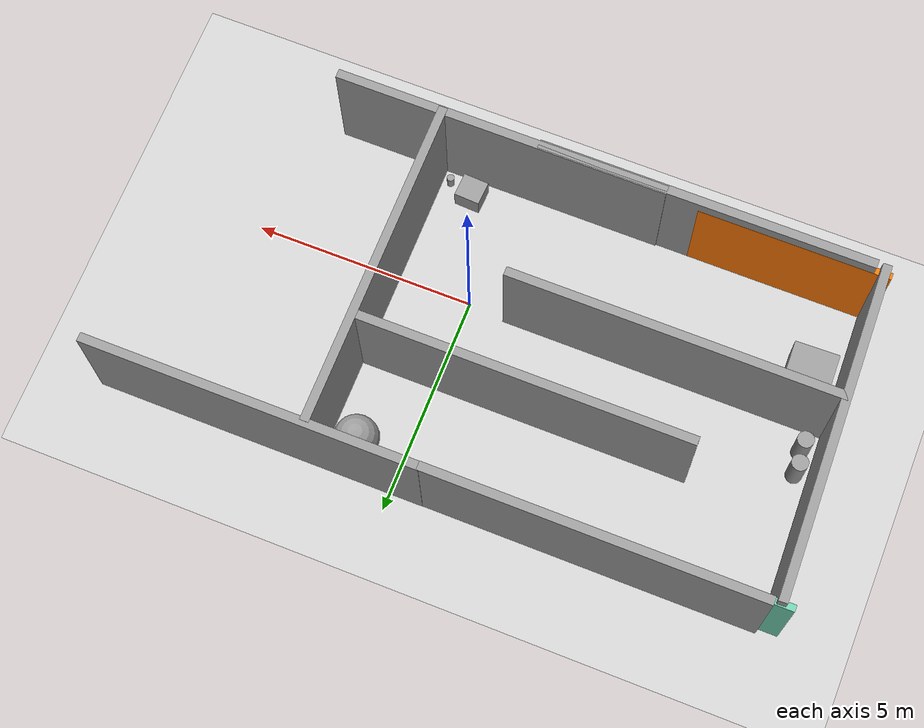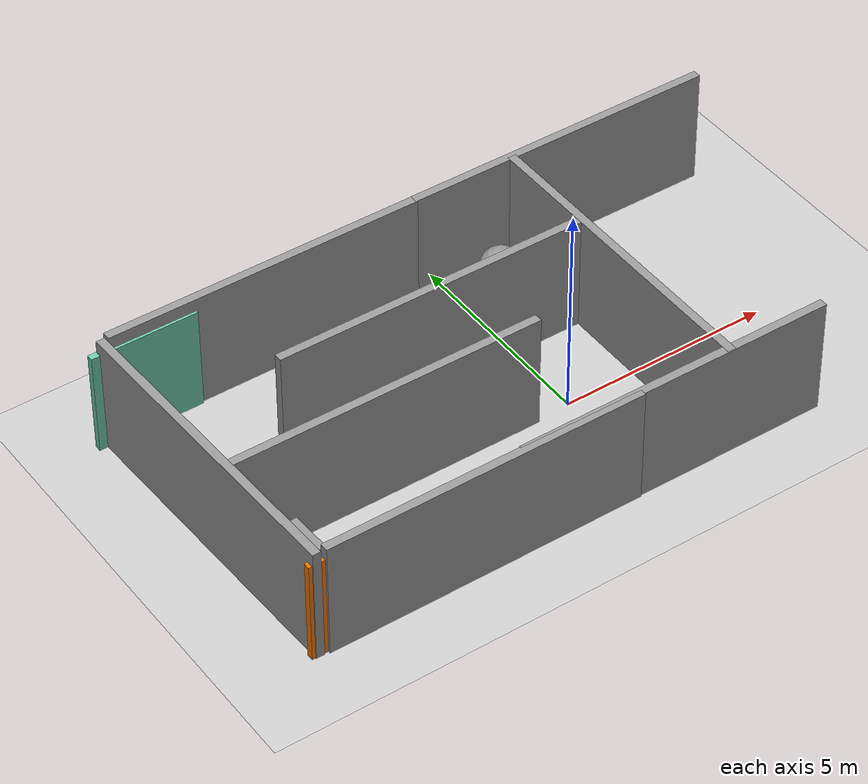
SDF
<sdf version="1.6">
 <world name="default">
  <light name="sun" type="directional">
   <pose>0 0 10 0 -0 0</pose>
   <diffuse>0.8 0.8 0.8 1</diffuse>
   <specular>0.2 0.2 0.2 1</specular>
   <attenuation>
    <range>1000</range>
    <constant>0.9</constant>
    <linear>0.01</linear>
    <quadratic>0.001</quadratic>
   </attenuation>
   <direction>-0.5 0.1 -0.9</direction>
  </light>
  <model name="ground_plane">
   <static>1</static>
   <link name="link">
    <collision name="collision">
     <geometry><plane><normal>0 0 1</normal><size>100 100</size></plane></geometry>
     <surface><friction><ode><mu>100</mu><mu2>50</mu2></ode></friction></surface>
    </collision>
    <visual name="visual">
     <cast_shadows>0</cast_shadows>
     <geometry><plane><normal>0 0 1</normal><size>100 100</size></plane></geometry>
     <material>
      <script><uri>file://media/materials/scripts/gazebo.material</uri><name>Gazebo/Grey</name></script>
     </material>
    </visual>
    <velocity_decay><linear>0</linear><angular>0</angular></velocity_decay>
   </link>
  </model>
  <physics name="default_physics" default="0" type="ode">
   <max_step_size>0.001</max_step_size>
   <real_time_factor>1</real_time_factor>
   <real_time_update_rate>1000</real_time_update_rate>
  </physics>
  <scene><ambient>0.4 0.4 0.4 1</ambient><background>0.7 0.7 0.7 1</background><shadows>1</shadows></scene>
  <spherical_coordinates>
   <surface_model>EARTH_WGS84</surface_model>
   <latitude_deg>0</latitude_deg>
   <longitude_deg>0</longitude_deg>
   <elevation>0</elevation>
   <heading_deg>0</heading_deg>
  </spherical_coordinates>
  <model name="grey_wall">
   <static>1</static>
   <link name="link">
    <pose>0 0 1.4 0 -0 0</pose>
    <collision name="collision"><geometry><box><size>7.5 0.2 2.8</size></box></geometry></collision>
    <visual name="visual">
     <cast_shadows>0</cast_shadows>
     <geometry><box><size>7.5 0.2 2.8</size></box></geometry>
     <material>
      <script>
       <uri>model://grey_wall/materials/scripts</uri>
       <uri>model://grey_wall/materials/textures</uri>
       <name>vrc/grey_wall</name>
      </script>
     </material>
    </visual>
    <velocity_decay><linear>0</linear><angular>0</angular></velocity_decay>
   </link>
   <pose>-4.45669 4.51369 0 0 -0 0</pose>
  </model>
  <model name="grey_wall_0">
   <static>1</static>
   <link name="link">
    <pose>0 0 1.4 0 -0 0</pose>
    <collision name="collision"><geometry><box><size>7.5 0.2 2.8</size></box></geometry></collision>
    <visual name="visual">
     <cast_shadows>0</cast_shadows>
     <geometry><box><size>7.5 0.2 2.8</size></box></geometry>
     <material>
      <script>
       <uri>model://grey_wall/materials/scripts</uri>
       <uri>model://grey_wall/materials/textures</uri>
       <name>vrc/grey_wall</name>
      </script>
     </material>
    </visual>
    <velocity_decay><linear>0</linear><angular>0</angular></velocity_decay>
   </link>
   <pose>-4.17438 -2.94975 0 0 -0 0</pose>
  </model>
  <model name="grey_wall_1">
   <static>1</static>
   <link name="link">
    <pose>0 0 1.4 0 -0 0</pose>
    <collision name="collision"><geometry><box><size>7.5 0.2 2.8</size></box></geometry></collision>
    <visual name="visual">
     <cast_shadows>0</cast_shadows>
     <geometry><box><size>7.5 0.2 2.8</size></box></geometry>
     <material>
      <script>
       <uri>model://grey_wall/materials/scripts</uri>
       <uri>model://grey_wall/materials/textures</uri>
       <name>vrc/grey_wall</name>
      </script>
     </material>
    </visual>
    <velocity_decay><linear>0</linear><angular>0</angular></velocity_decay>
   </link>
   <pose>-8.24091 0.730795 0 0 0 -1.53854</pose>
  </model>
  <model name="grey_wall_2">
   <static>1</static>
   <link name="link">
    <pose>0 0 1.4 0 -0 0</pose>
    <collision name="collision"><geometry><box><size>7.5 0.2 2.8</size></box></geometry></collision>
    <visual name="visual">
     <cast_shadows>0</cast_shadows>
     <geometry><box><size>7.5 0.2 2.8</size></box></geometry>
     <material>
      <script>
       <uri>model://grey_wall/materials/scripts</uri>
       <uri>model://grey_wall/materials/textures</uri>
       <name>vrc/grey_wall</name>
      </script>
     </material>
    </visual>
    <velocity_decay><linear>0</linear><angular>0</angular></velocity_decay>
   </link>
   <pose>-4.55904 0 0 0 -0 0</pose>
  </model>
  <model name="grey_wall_3">
   <static>1</static>
   <link name="link">
    <pose>0 0 1.4 0 -0 0</pose>
    <collision name="collision"><geometry><box><size>7.5 0.2 2.8</size></box></geometry></collision>
    <visual name="visual">
     <cast_shadows>0</cast_shadows>
     <geometry><box><size>7.5 0.2 2.8</size></box></geometry>
     <material>
      <script>
       <uri>model://grey_wall/materials/scripts</uri>
       <uri>model://grey_wall/materials/textures</uri>
       <name>vrc/grey_wall</name>
      </script>
     </material>
    </visual>
    <velocity_decay><linear>0</linear><angular>0</angular></velocity_decay>
   </link>
   <pose>1.76758 0.74778 0.00212 0 0 -1.57102</pose>
  </model>
  <model name="grey_wall_4">
   <static>1</static>
   <link name="link">
    <pose>0 0 1.4 0 -0 0</pose>
    <collision name="collision"><geometry><box><size>7.5 0.2 2.8</size></box></geometry></collision>
    <visual name="visual">
     <cast_shadows>0</cast_shadows>
     <geometry><box><size>7.5 0.2 2.8</size></box></geometry>
     <material>
      <script>
       <uri>model://grey_wall/materials/scripts</uri>
       <uri>model://grey_wall/materials/textures</uri>
       <name>vrc/grey_wall</name>
      </script>
     </material>
    </visual>
    <velocity_decay><linear>0</linear><angular>0</angular></velocity_decay>
   </link>
   <pose>0.431481 -2.92293 0 0 -0 0</pose>
  </model>
  <model name="grey_wall_5">
   <static>1</static>
   <link name="link">
    <pose>0 0 1.4 0 -0 0</pose>
    <collision name="collision"><geometry><box><size>7.5 0.2 2.8</size></box></geometry></collision>
    <visual name="visual">
     <cast_shadows>0</cast_shadows>
     <geometry><box><size>7.5 0.2 2.8</size></box></geometry>
     <material>
      <script>
       <uri>model://grey_wall/materials/scripts</uri>
       <uri>model://grey_wall/materials/textures</uri>
       <name>vrc/grey_wall</name>
      </script>
     </material>
    </visual>
    <velocity_decay><linear>0</linear><angular>0</angular></velocity_decay>
   </link>
   <pose>-2 2 0 0 -0 0</pose>
  </model>
  <model name="grey_wall_6">
   <static>1</static>
   <link name="link">
    <pose>0 0 1.4 0 -0 0</pose>
    <collision name="collision"><geometry><box><size>7.5 0.2 2.8</size></box></geometry></collision>
    <visual name="visual">
     <cast_shadows>0</cast_shadows>
     <geometry><box><size>7.5 0.2 2.8</size></box></geometry>
     <material>
      <script>
       <uri>model://grey_wall/materials/scripts</uri>
       <uri>model://grey_wall/materials/textures</uri>
       <name>vrc/grey_wall</name>
      </script>
     </material>
    </visual>
    <velocity_decay><linear>0</linear><angular>0</angular></velocity_decay>
   </link>
   <pose>3 4.52028 0 0 -0 0</pose>
  </model>
  <gravity>0 0 -9.8</gravity>
  <magnetic_field>6e-06 2.3e-05 -4.2e-05</magnetic_field>
  <atmosphere type="adiabatic"/>
  <model name="my_model">
   <pose>-6.35339 0.75522 0 0 -0 0</pose>
   <link name="Wall_10">
    <collision name="Wall_10_Collision">
     <geometry><box><size>2.5 0.15 2.5</size></box></geometry>
     <pose>0 0 1.25 0 -0 0</pose>
    </collision>
    <visual name="Wall_10_Visual">
     <pose>0 0 1.25 0 -0 0</pose>
     <geometry><box><size>2.5 0.15 2.5</size></box></geometry>
     <material>
      <script><uri>file://media/materials/scripts/gazebo.material</uri><name>Gazebo/Grey</name></script>
      <ambient>0.435294 0.796078 0.67451 1</ambient>
     </material>
    </visual>
    <pose>-1.05109 3.67826 0 0 -0 0</pose>
   </link>
   <link name="Wall_6">
    <collision name="Wall_6_Collision">
     <geometry><box><size>4.25 0.15 2.5</size></box></geometry>
     <pose>0 0 1.25 0 -0 0</pose>
    </collision>
    <visual name="Wall_6_Visual">
     <pose>0 0 1.25 0 -0 0</pose>
     <geometry><box><size>4.25 0.15 2.5</size></box></geometry>
     <material>
      <script><uri>file://media/materials/scripts/gazebo.material</uri><name>Gazebo/Grey</name></script>
      <ambient>0.996078 0.47451 0.0196078 1</ambient>
     </material>
    </visual>
    <pose>0.176087 -3.67826 0 0 -0 3.14159</pose>
   </link>
   <static>1</static>
  </model>
  <model name="unit_box_0">
   <pose>-7.42876 -0.951974 0.499995 0 -1e-05 0.032159</pose>
   <link name="link">
    <inertial>
     <mass>1</mass>
     <inertia>
      <ixx>0.166667</ixx>
      <ixy>0</ixy>
      <ixz>0</ixz>
      <iyy>0.166667</iyy>
      <iyz>0</iyz>
      <izz>0.166667</izz>
     </inertia>
    </inertial>
    <collision name="collision"><geometry><box><size>0.999999 1 1</size></box></geometry></collision>
    <visual name="visual">
     <geometry><box><size>0.999999 1 1</size></box></geometry>
     <material>
      <script><name>Gazebo/Grey</name><uri>file://media/materials/scripts/gazebo.material</uri></script>
     </material>
    </visual>
   </link>
  </model>
  <model name="unit_sphere_0">
   <pose>1.05647 3.84481 0.5 0 -0 0</pose>
   <link name="link">
    <inertial>
     <mass>1</mass>
     <inertia><ixx>0.1</ixx><ixy>0</ixy><ixz>0</ixz><iyy>0.1</iyy><iyz>0</iyz><izz>0.1</izz></inertia>
    </inertial>
    <collision name="collision"><geometry><sphere><radius>0.5</radius></sphere></geometry></collision>
    <visual name="visual">
     <geometry><sphere><radius>0.5</radius></sphere></geometry>
     <material>
      <script><name>Gazebo/Grey</name><uri>file://media/materials/scripts/gazebo.material</uri></script>
     </material>
    </visual>
   </link>
  </model>
  <model name="unit_box_1">
   <pose>0.915109 -2.40116 0.2552 0 0 -0.049177</pose>
   <link name="link">
    <inertial>
     <mass>1</mass>
     <inertia>
      <ixx>0.166667</ixx>
      <ixy>0</ixy>
      <ixz>0</ixz>
      <iyy>0.166667</iyy>
      <iyz>0</iyz>
      <izz>0.166667</izz>
     </inertia>
    </inertial>
    <collision name="collision">
     <geometry><box><size>0.582522 0.539069 0.510399</size></box></geometry>
    </collision>
    <visual name="visual">
     <geometry><box><size>0.582522 0.539069 0.510399</size></box></geometry>
     <material>
      <script><name>Gazebo/Grey</name><uri>file://media/materials/scripts/gazebo.material</uri></script>
     </material>
    </visual>
   </link>
  </model>
  <model name="unit_cylinder_0_0">
   <pose>1.48074 -2.56456 0.155666 0 -0 0.022371</pose>
   <link name="link">
    <inertial>
     <mass>1</mass>
     <inertia><ixx>0.145833</ixx><ixy>0</ixy><ixz>0</ixz><iyy>0.145833</iyy><iyz>0</iyz><izz>0.125</izz></inertia>
    </inertial>
    <collision name="collision">
     <geometry><cylinder><radius>0.0837525</radius><length>0.311333</length></cylinder></geometry>
    </collision>
    <visual name="visual">
     <geometry><cylinder><radius>0.0837525</radius><length>0.311333</length></cylinder></geometry>
     <material>
      <script><name>Gazebo/Grey</name><uri>file://media/materials/scripts/gazebo.material</uri></script>
     </material>
    </visual>
   </link>
  </model>
  <model name="unit_cylinder_0_1">
   <pose>-7.81693 0.568111 0.499991 0 -0 0</pose>
   <link name="link">
    <inertial>
     <mass>1</mass>
     <inertia><ixx>0.145833</ixx><ixy>0</ixy><ixz>0</ixz><iyy>0.145833</iyy><iyz>0</iyz><izz>0.125</izz></inertia>
    </inertial>
    <collision name="collision">
     <geometry><cylinder><radius>0.184938</radius><length>1</length></cylinder></geometry>
    </collision>
    <visual name="visual">
     <geometry><cylinder><radius>0.184938</radius><length>1</length></cylinder></geometry>
     <material>
      <script><name>Gazebo/Grey</name><uri>file://media/materials/scripts/gazebo.material</uri></script>
     </material>
    </visual>
   </link>
  </model>
  <model name="unit_cylinder_0_1_clone">
   <pose>-7.86417 1.08983 0.499999 0 -0 0</pose>
   <link name="link">
    <inertial>
     <mass>1</mass>
     <inertia><ixx>0.145833</ixx><ixy>0</ixy><ixz>0</ixz><iyy>0.145833</iyy><iyz>0</iyz><izz>0.125</izz></inertia>
    </inertial>
    <collision name="collision">
     <geometry><cylinder><radius>0.184938</radius><length>1</length></cylinder></geometry>
    </collision>
    <visual name="visual">
     <geometry><cylinder><radius>0.184938</radius><length>1</length></cylinder></geometry>
     <material>
      <script><name>Gazebo/Grey</name><uri>file://media/materials/scripts/gazebo.material</uri></script>
     </material>
    </visual>
   </link>
  </model>
 </world>
</sdf>
